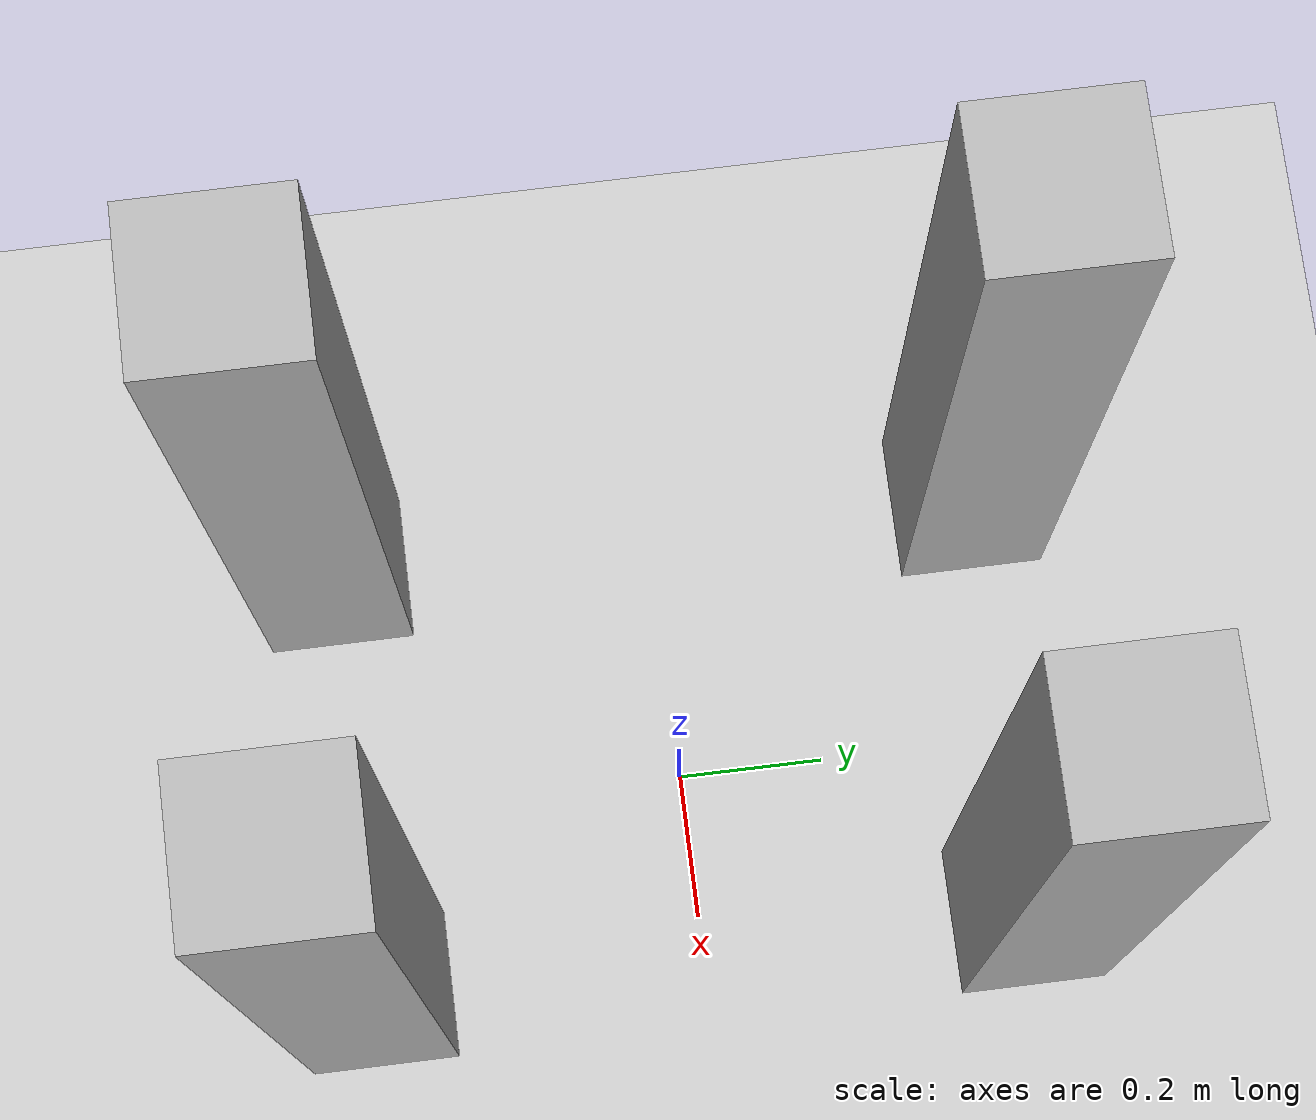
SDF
<sdf version="1.0">
 <world name="default">
  <include><uri>model://sun</uri></include>
  <include><uri>model://ground_plane</uri></include>
  <include><name>box1</name><pose>0.25 0.45 0.625 0 0 0</pose><uri>model://rigid_box</uri></include>
  <include><name>box2</name><pose>0.25 -0.45 0.625 0 0 0</pose><uri>model://rigid_box</uri></include>
  <include><name>box3</name><pose>-0.35 0.45 0.625 0 0 0</pose><uri>model://rigid_box</uri></include>
  <include><name>box4</name><pose>-0.35 -0.45 0.625 0 0 0</pose><uri>model://rigid_box</uri></include>
  <physics name="default_physics" default="0" type="ode">
   <gravity>0 0 -9.8066</gravity>
   <ode>
    <solver>
     <type>quick</type>
     <iters>10</iters>
     <sor>1.3</sor>
     <use_dynamic_moi_rescaling>0</use_dynamic_moi_rescaling>
    </solver>
    <constraints>
     <cfm>0</cfm>
     <erp>0.2</erp>
     <contact_max_correcting_vel>100</contact_max_correcting_vel>
     <contact_surface_layer>0.001</contact_surface_layer>
    </constraints>
   </ode>
   <max_step_size>0.002</max_step_size>
   <real_time_factor>1</real_time_factor>
   <real_time_update_rate>500</real_time_update_rate>
   <magnetic_field>6.0e-6 2.3e-5 -4.2e-5</magnetic_field>
  </physics>
 </world>
</sdf>

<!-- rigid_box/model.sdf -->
<sdf version="1.5">
  <model name="rigid_box">
	<pose>0 0 0  0 0 0</pose>
	<static>true</static>
	<link name="link">
	  <collision name="collision">
		<geometry>
		  <box>
			  <size>.2 0.2 1.25</size>
		  </box>
		</geometry>
	  </collision>
	  <visual name="visual">
		<geometry>
		  <box>
			  <size>.2 0.2 1.25</size>
		  </box>
		</geometry>
	  </visual>
	</link>
  </model>
</sdf>
